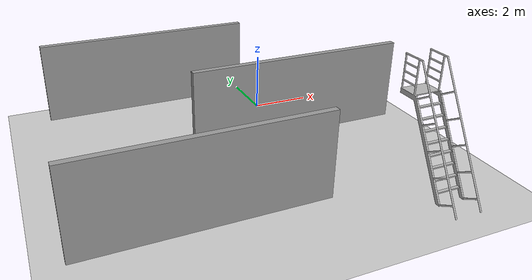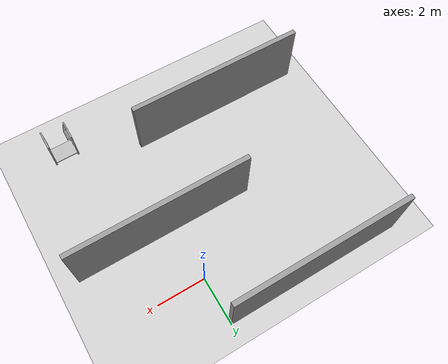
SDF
<sdf version="1.6">
 <world name="default">
  <light name="sun" type="directional">
   <pose>0 0 10 0 -0 0</pose>
   <diffuse>0.8 0.8 0.8 1</diffuse>
   <specular>0.1 0.1 0.1 1</specular>
   <attenuation>
    <range>1000</range>
    <constant>0.9</constant>
    <linear>0.01</linear>
    <quadratic>0.001</quadratic>
   </attenuation>
   <direction>-0.5 0.5 -1</direction>
  </light>
  <model name="ground_plane">
   <static>1</static>
   <link name="link">
    <collision name="collision">
     <geometry><plane><normal>0 0 1</normal><size>100 100</size></plane></geometry>
     <surface><friction><ode><mu>100</mu><mu2>50</mu2></ode></friction></surface>
    </collision>
    <visual name="visual">
     <cast_shadows>0</cast_shadows>
     <geometry><plane><normal>0 0 1</normal><size>100 100</size></plane></geometry>
     <material>
      <script><uri>file://media/materials/scripts/gazebo.material</uri><name>Gazebo/Grey</name></script>
     </material>
    </visual>
   </link>
  </model>
  <gravity>0 0 -9.8</gravity>
  <magnetic_field>6e-06 2.3e-05 -4.2e-05</magnetic_field>
  <atmosphere type="adiabatic"/>
  <physics name="default_physics" default="0" type="ode">
   <max_step_size>0.001</max_step_size>
   <real_time_factor>1</real_time_factor>
   <real_time_update_rate>1000</real_time_update_rate>
  </physics>
  <scene><ambient>0.4 0.4 0.4 1</ambient><background>0.7 0.7 0.7 1</background><shadows>1</shadows></scene>
  <spherical_coordinates>
   <surface_model>EARTH_WGS84</surface_model>
   <latitude_deg>0</latitude_deg>
   <longitude_deg>0</longitude_deg>
   <elevation>0</elevation>
   <heading_deg>0</heading_deg>
  </spherical_coordinates>
  <model name="grey_wall">
   <static>1</static>
   <link name="link">
    <pose>0 0 1.4 0 -0 0</pose>
    <collision name="collision"><geometry><box><size>7.5 0.2 2.8</size></box></geometry></collision>
    <visual name="visual">
     <cast_shadows>0</cast_shadows>
     <geometry><box><size>7.5 0.2 2.8</size></box></geometry>
     <material>
      <script>
       <uri>model://grey_wall/materials/scripts</uri>
       <uri>model://grey_wall/materials/textures</uri>
       <name>vrc/grey_wall</name>
      </script>
     </material>
    </visual>
   </link>
   <pose>-3.72805 1.88457 0 0 -0 0</pose>
  </model>
  <model name="grey_wall_0">
   <static>1</static>
   <link name="link">
    <pose>0 0 1.4 0 -0 0</pose>
    <collision name="collision"><geometry><box><size>7.5 0.2 2.8</size></box></geometry></collision>
    <visual name="visual">
     <cast_shadows>0</cast_shadows>
     <geometry><box><size>7.5 0.2 2.8</size></box></geometry>
     <material>
      <script>
       <uri>model://grey_wall/materials/scripts</uri>
       <uri>model://grey_wall/materials/textures</uri>
       <name>vrc/grey_wall</name>
      </script>
     </material>
    </visual>
   </link>
   <pose>0.373986 -2.40096 0 0 -0 0</pose>
  </model>
  <model name="grey_wall_1">
   <static>1</static>
   <link name="link">
    <pose>0 0 1.4 0 -0 0</pose>
    <collision name="collision"><geometry><box><size>7.5 0.2 2.8</size></box></geometry></collision>
    <visual name="visual">
     <cast_shadows>0</cast_shadows>
     <geometry><box><size>7.5 0.2 2.8</size></box></geometry>
     <material>
      <script>
       <uri>model://grey_wall/materials/scripts</uri>
       <uri>model://grey_wall/materials/textures</uri>
       <name>vrc/grey_wall</name>
      </script>
     </material>
    </visual>
   </link>
   <pose>-4.34723 -6.3897 0 0 -0 0</pose>
  </model>
  <model name="ladder">
   <static>1</static>
   <link name="link">
    <collision name="step0">
     <pose>0 -0.96703 0.286 0 -0 0</pose>
     <geometry><box><size>0.9 0.1016 0.0381</size></box></geometry>
    </collision>
    <collision name="step1">
     <pose>0 -0.79106 0.59054 0 -0 0</pose>
     <geometry><box><size>0.9 0.1016 0.0381</size></box></geometry>
    </collision>
    <collision name="step2">
     <pose>0 -0.61509 0.89508 0 -0 0</pose>
     <geometry><box><size>0.9 0.1016 0.0381</size></box></geometry>
    </collision>
    <collision name="step3">
     <pose>0 -0.43912 1.19962 0 -0 0</pose>
     <geometry><box><size>0.9 0.1016 0.0381</size></box></geometry>
    </collision>
    <collision name="step4">
     <pose>0 -0.26315 1.50416 0 -0 0</pose>
     <geometry><box><size>0.9 0.1016 0.0381</size></box></geometry>
    </collision>
    <collision name="step5">
     <pose>0 -0.08718 1.8087 0 -0 0</pose>
     <geometry><box><size>0.9 0.1016 0.0381</size></box></geometry>
    </collision>
    <collision name="step6">
     <pose>0 0.08879 2.11324 0 -0 0</pose>
     <geometry><box><size>0.9 0.1016 0.0381</size></box></geometry>
    </collision>
    <collision name="step7">
     <pose>0 0.26476 2.41778 0 -0 0</pose>
     <geometry><box><size>0.9 0.1016 0.0381</size></box></geometry>
    </collision>
    <collision name="landing">
     <pose>0 0.73039 2.72432 0 -0 0</pose>
     <geometry><box><size>0.9 0.6096 0.0381</size></box></geometry>
    </collision>
    <collision name="left_side_wall">
     <pose>-0.43217 -0.37451 1.3386 1.0472 -0 0</pose>
     <geometry><box><size>0.0508 3.16758 0.13</size></box></geometry>
    </collision>
    <collision name="left_side_landing_wall">
     <pose>-0.43217 0.69819 2.667 0 -0 0</pose>
     <geometry><box><size>0.0508 0.67401 0.1524</size></box></geometry>
    </collision>
    <collision name="left_railing_landing_3">
     <pose>-0.433355 0.66933 3.81 1.5707 -0 0</pose>
     <geometry><cylinder><radius>0.02413</radius><length>0.73172</length></cylinder></geometry>
    </collision>
    <collision name="left_railing_landing_2">
     <pose>-0.433355 0.73166 3.5433 1.5707 -0 0</pose>
     <geometry><cylinder><radius>0.02413</radius><length>0.5588</length></cylinder></geometry>
    </collision>
    <collision name="left_railing_landing_1">
     <pose>-0.433355 0.73166 3.2766 1.5707 -0 0</pose>
     <geometry><cylinder><radius>0.02413</radius><length>0.5588</length></cylinder></geometry>
    </collision>
    <collision name="left_railing_landing_0">
     <pose>-0.433355 0.73166 3.0099 1.5707 -0 0</pose>
     <geometry><cylinder><radius>0.02413</radius><length>0.5588</length></cylinder></geometry>
    </collision>
    <collision name="left_railing_landing_upright_back">
     <pose>-0.433355 1.01088 3.2766 0 -0 0</pose>
     <geometry><cylinder><radius>0.02413</radius><length>1.0668</length></cylinder></geometry>
    </collision>
    <collision name="left_railing_landing_upright_front">
     <pose>-0.433355 0.45208 3.2766 0 -0 0</pose>
     <geometry><cylinder><radius>0.02413</radius><length>1.0668</length></cylinder></geometry>
    </collision>
    <collision name="left_railing_upright_4">
     <pose>-0.433355 0.0699 2.80986 1.03414 -0 0</pose>
     <geometry><cylinder><radius>0.02413</radius><length>0.57</length></cylinder></geometry>
    </collision>
    <collision name="left_railing_upright_3">
     <pose>-0.433355 -0.31006 2.15169 1.03414 -0 0</pose>
     <geometry><cylinder><radius>0.02413</radius><length>0.57</length></cylinder></geometry>
    </collision>
    <collision name="left_railing_upright_2">
     <pose>-0.433355 -0.6911 1.49172 1.03414 -0 0</pose>
     <geometry><cylinder><radius>0.02413</radius><length>0.57</length></cylinder></geometry>
    </collision>
    <collision name="left_railing_upright_1">
     <pose>-0.433355 -1.0732 0.82995 1.03414 -0 0</pose>
     <geometry><cylinder><radius>0.02413</radius><length>0.57</length></cylinder></geometry>
    </collision>
    <collision name="left_railing_upright_0">
     <pose>-0.433355 -1.45316 0.17179 1.03414 -0 0</pose>
     <geometry><cylinder><radius>0.02413</radius><length>0.57</length></cylinder></geometry>
    </collision>
    <collision name="left_railing_long">
     <pose>-0.433355 -0.781 1.9068 -0.523503 0 0</pose>
     <geometry><cylinder><radius>0.02413</radius><length>4.42295</length></cylinder></geometry>
    </collision>
    <collision name="right_side_wall">
     <pose>0.43217 -0.37451 1.3386 1.0472 -0 0</pose>
     <geometry><box><size>0.0508 3.16758 0.13</size></box></geometry>
    </collision>
    <collision name="right_side_landing_wall">
     <pose>0.43217 0.69819 2.667 0 -0 0</pose>
     <geometry><box><size>0.0508 0.67401 0.1524</size></box></geometry>
    </collision>
    <collision name="right_railing_landing_3">
     <pose>0.433355 0.66933 3.81 1.5707 -0 0</pose>
     <geometry><cylinder><radius>0.02413</radius><length>0.73172</length></cylinder></geometry>
    </collision>
    <collision name="right_railing_landing_2">
     <pose>0.433355 0.73166 3.5433 1.5707 -0 0</pose>
     <geometry><cylinder><radius>0.02413</radius><length>0.5588</length></cylinder></geometry>
    </collision>
    <collision name="right_railing_landing_1">
     <pose>0.433355 0.73166 3.2766 1.5707 -0 0</pose>
     <geometry><cylinder><radius>0.02413</radius><length>0.5588</length></cylinder></geometry>
    </collision>
    <collision name="right_railing_landing_0">
     <pose>0.433355 0.73166 3.0099 1.5707 -0 0</pose>
     <geometry><cylinder><radius>0.02413</radius><length>0.5588</length></cylinder></geometry>
    </collision>
    <collision name="right_railing_landing_upright_back">
     <pose>0.433355 1.01088 3.2766 0 -0 0</pose>
     <geometry><cylinder><radius>0.02413</radius><length>1.0668</length></cylinder></geometry>
    </collision>
    <collision name="right_railing_landing_upright_front">
     <pose>0.433355 0.45208 3.2766 0 -0 0</pose>
     <geometry><cylinder><radius>0.02413</radius><length>1.0668</length></cylinder></geometry>
    </collision>
    <collision name="right_railing_upright_4">
     <pose>0.433355 0.0699 2.80986 1.03414 -0 0</pose>
     <geometry><cylinder><radius>0.02413</radius><length>0.57</length></cylinder></geometry>
    </collision>
    <collision name="right_railing_upright_3">
     <pose>0.433355 -0.31006 2.15169 1.03414 -0 0</pose>
     <geometry><cylinder><radius>0.02413</radius><length>0.57</length></cylinder></geometry>
    </collision>
    <collision name="right_railing_upright_2">
     <pose>0.433355 -0.6911 1.49172 1.03414 -0 0</pose>
     <geometry><cylinder><radius>0.02413</radius><length>0.57</length></cylinder></geometry>
    </collision>
    <collision name="right_railing_upright_1">
     <pose>0.433355 -1.0732 0.82995 1.03414 -0 0</pose>
     <geometry><cylinder><radius>0.02413</radius><length>0.57</length></cylinder></geometry>
    </collision>
    <collision name="right_railing_upright_0">
     <pose>0.433355 -1.45316 0.17179 1.03414 -0 0</pose>
     <geometry><cylinder><radius>0.02413</radius><length>0.57</length></cylinder></geometry>
    </collision>
    <collision name="right_railing_long">
     <pose>0.433355 -0.781 1.9068 -0.523503 0 0</pose>
     <geometry><cylinder><radius>0.02413</radius><length>4.42295</length></cylinder></geometry>
    </collision>
    <visual name="visual">
     <geometry><mesh><uri>model://drc_practice_ladder/meshes/ladder.dae</uri><scale>1 1 1</scale></mesh></geometry>
    </visual>
   </link>
   <pose>2.37528 -6.81822 0 0 -0 0</pose>
  </model>
  <plugin name="ros_interface_plugin" filename="librotors_gazebo_ros_interface_plugin.so"/>
  <spherical_coordinates>
   <surface_model>EARTH_WGS84</surface_model>
   <latitude_deg>47.3667</latitude_deg>
   <longitude_deg>8.5500</longitude_deg>
   <elevation>500.0</elevation>
   <heading_deg>0</heading_deg>
  </spherical_coordinates>
  <physics type="ode">
   <ode>
    <solver><type>quick</type><iters>1000</iters><sor>1.3</sor></solver>
    <constraints>
     <cfm>0</cfm>
     <erp>0.2</erp>
     <contact_max_correcting_vel>100</contact_max_correcting_vel>
     <contact_surface_layer>0.001</contact_surface_layer>
    </constraints>
   </ode>
   <max_step_size>0.01</max_step_size>
   <real_time_factor>1</real_time_factor>
   <real_time_update_rate>100</real_time_update_rate>
   <gravity>0 0 -9.8</gravity>
  </physics>
 </world>
</sdf>
